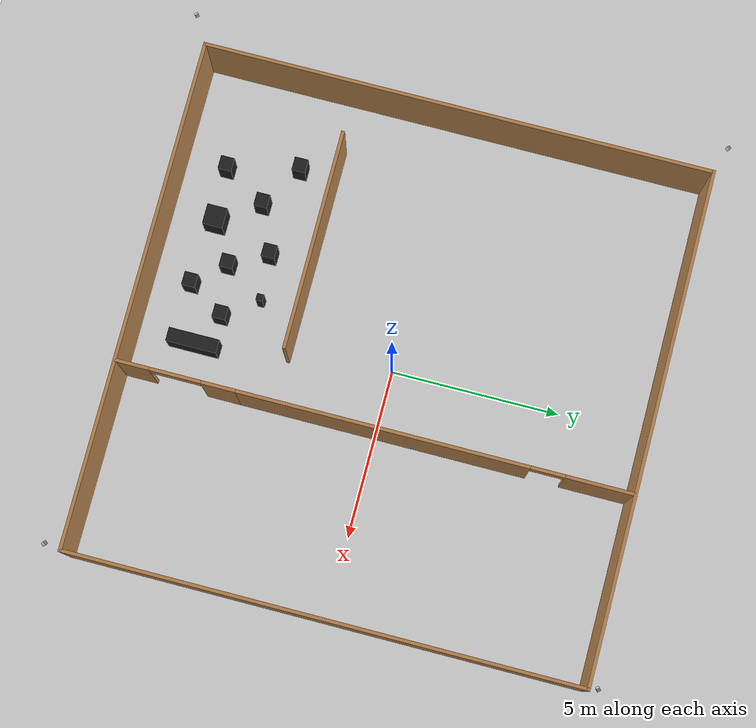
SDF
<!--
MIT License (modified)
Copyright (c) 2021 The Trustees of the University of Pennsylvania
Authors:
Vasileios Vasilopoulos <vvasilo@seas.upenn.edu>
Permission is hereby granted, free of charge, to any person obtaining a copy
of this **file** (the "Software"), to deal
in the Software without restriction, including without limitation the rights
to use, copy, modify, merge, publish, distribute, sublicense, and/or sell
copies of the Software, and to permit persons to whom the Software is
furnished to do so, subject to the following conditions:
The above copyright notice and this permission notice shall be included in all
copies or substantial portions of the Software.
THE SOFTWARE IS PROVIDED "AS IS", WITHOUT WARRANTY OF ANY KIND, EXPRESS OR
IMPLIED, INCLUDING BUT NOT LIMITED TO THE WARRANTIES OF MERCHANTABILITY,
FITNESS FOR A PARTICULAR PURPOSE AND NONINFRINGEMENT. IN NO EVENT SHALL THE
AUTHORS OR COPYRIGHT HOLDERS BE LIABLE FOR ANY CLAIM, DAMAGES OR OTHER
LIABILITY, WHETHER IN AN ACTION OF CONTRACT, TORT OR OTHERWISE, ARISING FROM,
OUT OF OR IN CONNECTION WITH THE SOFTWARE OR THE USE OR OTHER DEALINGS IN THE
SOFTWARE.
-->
<sdf version="1.6">
 <world name="default">
  <light name="sun" type="directional">
   <pose>0 0 10 0 -0 0</pose>
   <diffuse>0.8 0.8 0.8 1</diffuse>
   <specular>0.1 0.1 0.1 1</specular>
   <attenuation>
    <range>1000</range>
    <constant>0.9</constant>
    <linear>0.01</linear>
    <quadratic>0.001</quadratic>
   </attenuation>
   <direction>-0.5 0.5 -1</direction>
  </light>
  <model name="ground_plane">
   <static>1</static>
   <link name="link">
    <collision name="collision">
     <geometry><plane><normal>0 0 1</normal><size>100 100</size></plane></geometry>
     <surface><friction><ode><mu>100</mu><mu2>50</mu2></ode></friction></surface>
    </collision>
    <visual name="visual">
     <cast_shadows>0</cast_shadows>
     <geometry><plane><normal>0 0 1</normal><size>100 100</size></plane></geometry>
     <material>
      <script><uri>file://media/materials/scripts/gazebo.material</uri><name>Gazebo/Grey</name></script>
     </material>
    </visual>
   </link>
  </model>
  <gravity>0 0 -9.81</gravity>
  <magnetic_field>6e-06 2.3e-05 -4.2e-05</magnetic_field>
  <atmosphere type="adiabatic"/>
  <physics name="default_physics" default="0" type="ode">
   <max_step_size>0.0001</max_step_size>
   <real_time_factor>1</real_time_factor>
   <real_time_update_rate>10000</real_time_update_rate>
  </physics>
  <scene><ambient>0.4 0.4 0.4 1</ambient><background>0.7 0.7 0.7 1</background><shadows>1</shadows></scene>
  <spherical_coordinates>
   <surface_model>EARTH_WGS84</surface_model>
   <latitude_deg>0</latitude_deg>
   <longitude_deg>0</longitude_deg>
   <elevation>0</elevation>
   <heading_deg>0</heading_deg>
  </spherical_coordinates>
  <model name="building">
   <link name="Wall_0">
    <collision name="Wall_0_Collision">
     <geometry><box><size>15.1 0.1 2.5</size></box></geometry>
     <pose>0 0 1.25 0 -0 0</pose>
    </collision>
    <visual name="Wall_0_Visual">
     <pose>0 0 1.25 0 -0 0</pose>
     <geometry><box><size>15.1 0.1 2.5</size></box></geometry>
     <material>
      <script><uri>file://media/materials/scripts/gazebo.material</uri><name>Gazebo/Wood</name></script>
      <ambient>1 1 1 1</ambient>
     </material>
     <meta><layer>0</layer></meta>
    </visual>
    <pose>0 -7.5 0 0 -0 0</pose>
   </link>
   <link name="Wall_1">
    <collision name="Wall_1_Collision">
     <geometry><box><size>15 0.1 2.5</size></box></geometry>
     <pose>0 0 1.25 0 -0 0</pose>
    </collision>
    <visual name="Wall_1_Visual">
     <pose>0 0 1.25 0 -0 0</pose>
     <geometry><box><size>15 0.1 2.5</size></box></geometry>
     <material>
      <script><uri>file://media/materials/scripts/gazebo.material</uri><name>Gazebo/Wood</name></script>
      <ambient>1 1 1 1</ambient>
     </material>
     <meta><layer>0</layer></meta>
    </visual>
    <pose>7.5 0 0 0 -0 1.5708</pose>
   </link>
   <link name="Wall_2">
    <collision name="Wall_2_Collision">
     <geometry><box><size>15.1 0.1 2.5</size></box></geometry>
     <pose>0 0 1.25 0 -0 0</pose>
    </collision>
    <visual name="Wall_2_Visual">
     <pose>0 0 1.25 0 -0 0</pose>
     <geometry><box><size>15.1 0.1 2.5</size></box></geometry>
     <material>
      <script><uri>file://media/materials/scripts/gazebo.material</uri><name>Gazebo/Wood</name></script>
      <ambient>1 1 1 1</ambient>
     </material>
     <meta><layer>0</layer></meta>
    </visual>
    <pose>0 7.5 0 0 -0 3.14159</pose>
   </link>
   <link name="Wall_3">
    <collision name="Wall_3_Collision">
     <geometry><box><size>15 0.1 2.5</size></box></geometry>
     <pose>0 0 1.25 0 -0 0</pose>
    </collision>
    <visual name="Wall_3_Visual">
     <pose>0 0 1.25 0 -0 0</pose>
     <geometry><box><size>15 0.1 2.5</size></box></geometry>
     <material>
      <script><uri>file://media/materials/scripts/gazebo.material</uri><name>Gazebo/Wood</name></script>
      <ambient>1 1 1 1</ambient>
     </material>
     <meta><layer>0</layer></meta>
    </visual>
    <pose>-7.5 0 0 0 -0 -1.5708</pose>
   </link>
   <link name="Wall_4a">
    <collision name="Wall_4a_Collision">
     <geometry><box><size>8.5 0.1 2.5</size></box></geometry>
     <pose>0 0 1.25 0 -0 0</pose>
    </collision>
    <visual name="Wall_4a_Visual">
     <pose>0 0 1.25 0 -0 0</pose>
     <geometry><box><size>8.5 0.1 2.5</size></box></geometry>
     <material>
      <script><uri>file://media/materials/scripts/gazebo.material</uri><name>Gazebo/Wood</name></script>
      <ambient>1 1 1 1</ambient>
     </material>
     <meta><layer>0</layer></meta>
    </visual>
    <pose>2 0.25 0 0 -0 -1.5708</pose>
   </link>
   <link name="Wall_4b">
    <collision name="Wall_4b_Collision">
     <geometry><box><size>2 0.1 2.5</size></box></geometry>
     <pose>0 0 1.25 0 -0 0</pose>
    </collision>
    <visual name="Wall_4b_Visual">
     <pose>0 0 1.25 0 -0 0</pose>
     <geometry><box><size>2 0.1 2.5</size></box></geometry>
     <material>
      <script><uri>file://media/materials/scripts/gazebo.material</uri><name>Gazebo/Wood</name></script>
      <ambient>1 1 1 1</ambient>
     </material>
     <meta><layer>0</layer></meta>
    </visual>
    <pose>2 6.5 0 0 -0 -1.5708</pose>
   </link>
   <link name="Wall_4c">
    <collision name="Wall_4c_Collision">
     <geometry><box><size>1 0.1 0.5</size></box></geometry>
     <pose>0 0 2.25 0 -0 0</pose>
    </collision>
    <visual name="Wall_4c_Visual">
     <pose>0 0 2.25 0 -0 0</pose>
     <geometry><box><size>1 0.1 0.5</size></box></geometry>
     <material>
      <script><uri>file://media/materials/scripts/gazebo.material</uri><name>Gazebo/Wood</name></script>
      <ambient>1 1 1 1</ambient>
     </material>
     <meta><layer>0</layer></meta>
    </visual>
    <pose>2 5.0 0 0 -0 -1.5708</pose>
   </link>
   <link name="Wall_5a">
    <collision name="Wall_5a_Collision">
     <geometry><box><size>1 0.1 2.5</size></box></geometry>
     <pose>0 0 1.25 0 -0 0</pose>
    </collision>
    <visual name="Wall_5a_Visual">
     <pose>0 0 1.25 0 -0 0</pose>
     <geometry><box><size>1 0.1 2.5</size></box></geometry>
     <material>
      <script><uri>file://media/materials/scripts/gazebo.material</uri><name>Gazebo/Wood</name></script>
      <ambient>1 1 1 1</ambient>
     </material>
     <meta><layer>0</layer></meta>
    </visual>
    <pose>2 -4.5 0 0 -0 -1.5708</pose>
   </link>
   <link name="Wall_5b">
    <collision name="Wall_5b_Collision">
     <geometry><box><size>1 0.1 2.5</size></box></geometry>
     <pose>0 0 1.25 0 -0 0</pose>
    </collision>
    <visual name="Wall_5b_Visual">
     <pose>0 0 1.25 0 -0 0</pose>
     <geometry><box><size>1 0.1 2.5</size></box></geometry>
     <material>
      <script><uri>file://media/materials/scripts/gazebo.material</uri><name>Gazebo/Wood</name></script>
      <ambient>1 1 1 1</ambient>
     </material>
     <meta><layer>0</layer></meta>
    </visual>
    <pose>2 -7 0 0 -0 -1.5708</pose>
   </link>
   <link name="Wall_5c">
    <collision name="Wall_5c_Collision">
     <geometry><box><size>1.5 0.1 0.5</size></box></geometry>
     <pose>0 0 2.25 0 -0 0</pose>
    </collision>
    <visual name="Wall_5c_Visual">
     <pose>0 0 2.25 0 -0 0</pose>
     <geometry><box><size>1.5 0.1 0.5</size></box></geometry>
     <material>
      <script><uri>file://media/materials/scripts/gazebo.material</uri><name>Gazebo/Wood</name></script>
      <ambient>1 1 1 1</ambient>
     </material>
     <meta><layer>0</layer></meta>
    </visual>
    <pose>2 -5.75 0 0 -0 -1.5708</pose>
   </link>
   <link name="Wall_6">
    <collision name="Wall_6_Collision">
     <geometry><box><size>6.5 0.1 2.5</size></box></geometry>
     <pose>0 0 1.25 0 -0 0</pose>
    </collision>
    <visual name="Wall_6_Visual">
     <pose>0 0 1.25 0 -0 0</pose>
     <geometry><box><size>6.5 0.1 2.5</size></box></geometry>
     <material>
      <script><uri>file://media/materials/scripts/gazebo.material</uri><name>Gazebo/Wood</name></script>
      <ambient>1 1 1 1</ambient>
     </material>
     <meta><layer>0</layer></meta>
    </visual>
    <pose>-2.75 -3 0 0 -0 0</pose>
   </link>
   <link name="obstacle_1">
    <collision name="obstacle_1_Collision">
     <geometry><box><size>0.4 1.5 1.0</size></box></geometry>
     <pose>0 0 0.5 0 -0 0</pose>
    </collision>
    <visual name="obstacle_1_Visual">
     <pose>0 0 0.5 0 -0 0</pose>
     <geometry><box><size>0.4 1.5 1.0</size></box></geometry>
     <material>
      <script><uri>file://media/materials/scripts/gazebo.material</uri><name>Gazebo/FlatBlack</name></script>
     </material>
     <meta><layer>0</layer></meta>
    </visual>
    <pose>0.7 -5.75 0 0 -0 0</pose>
   </link>
   <link name="obstacle_2">
    <collision name="obstacle_2_Collision">
     <geometry><box><size>0.4 0.4 1.0</size></box></geometry>
     <pose>0 0 0.5 0 -0 0</pose>
    </collision>
    <visual name="obstacle_2_Visual">
     <pose>0 0 0.5 0 -0 0</pose>
     <geometry><box><size>0.4 0.4 1.0</size></box></geometry>
     <material>
      <script><uri>file://media/materials/scripts/gazebo.material</uri><name>Gazebo/FlatBlack</name></script>
     </material>
     <meta><layer>0</layer></meta>
    </visual>
    <pose>-5.1 -4.1 0 0 -0 0</pose>
   </link>
   <link name="obstacle_3">
    <collision name="obstacle_3_Collision">
     <geometry><box><size>0.4 0.4 1.0</size></box></geometry>
     <pose>0 0 0.5 0 -0 0</pose>
    </collision>
    <visual name="obstacle_3_Visual">
     <pose>0 0 0.5 0 -0 0</pose>
     <geometry><box><size>0.4 0.4 1.0</size></box></geometry>
     <material>
      <script><uri>file://media/materials/scripts/gazebo.material</uri><name>Gazebo/FlatBlack</name></script>
     </material>
     <meta><layer>0</layer></meta>
    </visual>
    <pose>-4.6 -6.2 0 0 -0 0</pose>
   </link>
   <link name="obstacle_4">
    <collision name="obstacle_4_Collision">
     <geometry><box><size>0.4 0.4 1.0</size></box></geometry>
     <pose>0 0 0.5 0 -0 0</pose>
    </collision>
    <visual name="obstacle_4_Visual">
     <pose>0 0 0.5 0 -0 0</pose>
     <geometry><box><size>0.4 0.4 1.0</size></box></geometry>
     <material>
      <script><uri>file://media/materials/scripts/gazebo.material</uri><name>Gazebo/FlatBlack</name></script>
     </material>
     <meta><layer>0</layer></meta>
    </visual>
    <pose>-3.8 -4.9 0 0 -0 0</pose>
   </link>
   <link name="obstacle_5">
    <collision name="obstacle_5_Collision">
     <geometry><box><size>0.4 0.4 1.0</size></box></geometry>
     <pose>0 0 0.5 0 -0 0</pose>
    </collision>
    <visual name="obstacle_5_Visual">
     <pose>0 0 0.5 0 -0 0</pose>
     <geometry><box><size>0.4 0.4 1.0</size></box></geometry>
     <material>
      <script><uri>file://media/materials/scripts/gazebo.material</uri><name>Gazebo/FlatBlack</name></script>
     </material>
     <meta><layer>0</layer></meta>
    </visual>
    <pose>-2.4 -4.3 0 0 -0 0</pose>
   </link>
   <link name="obstacle_6">
    <collision name="obstacle_6_Collision">
     <geometry><box><size>0.4 0.4 1.0</size></box></geometry>
     <pose>0 0 0.5 0 -0 0</pose>
    </collision>
    <visual name="obstacle_6_Visual">
     <pose>0 0 0.5 0 -0 0</pose>
     <geometry><box><size>0.4 0.4 1.0</size></box></geometry>
     <material>
      <script><uri>file://media/materials/scripts/gazebo.material</uri><name>Gazebo/FlatBlack</name></script>
     </material>
     <meta><layer>0</layer></meta>
    </visual>
    <pose>-1.8 -5.4 0 0 -0 0</pose>
   </link>
   <link name="obstacle_7">
    <collision name="obstacle_7_Collision">
     <geometry><box><size>0.4 0.4 1.0</size></box></geometry>
     <pose>0 0 0.5 0 -0 0</pose>
    </collision>
    <visual name="obstacle_7_Visual">
     <pose>0 0 0.5 0 -0 0</pose>
     <geometry><box><size>0.4 0.4 1.0</size></box></geometry>
     <material>
      <script><uri>file://media/materials/scripts/gazebo.material</uri><name>Gazebo/FlatBlack</name></script>
     </material>
     <meta><layer>0</layer></meta>
    </visual>
    <pose>-1.0 -6.3 0 0 -0 0</pose>
   </link>
   <link name="obstacle_8">
    <collision name="obstacle_8_Collision">
     <geometry><box><size>0.6 0.6 1.0</size></box></geometry>
     <pose>0 0 0.5 0 -0 0</pose>
    </collision>
    <visual name="obstacle_8_Visual">
     <pose>0 0 0.5 0 -0 0</pose>
     <geometry><box><size>0.6 0.6 1.0</size></box></geometry>
     <material>
      <script><uri>file://media/materials/scripts/gazebo.material</uri><name>Gazebo/FlatBlack</name></script>
     </material>
     <meta><layer>0</layer></meta>
    </visual>
    <pose>-3 -6.1 0 0 -0 0</pose>
   </link>
   <link name="obstacle_9">
    <collision name="obstacle_9_Collision">
     <geometry><box><size>0.2 0.2 1.0</size></box></geometry>
     <pose>0 0 0.5 0 -0 0</pose>
    </collision>
    <visual name="obstacle_9_Visual">
     <pose>0 0 0.5 0 -0 0</pose>
     <geometry><box><size>0.2 0.2 1.0</size></box></geometry>
     <material>
      <script><uri>file://media/materials/scripts/gazebo.material</uri><name>Gazebo/FlatBlack</name></script>
     </material>
     <meta><layer>0</layer></meta>
    </visual>
    <pose>-1 -4.2 0 0 -0 0</pose>
   </link>
   <link name="obstacle_10">
    <collision name="obstacle_10_Collision">
     <geometry><box><size>0.4 0.4 1.0</size></box></geometry>
     <pose>0 0 0.5 0 -0 0</pose>
    </collision>
    <visual name="obstacle_10_Visual">
     <pose>0 0 0.5 0 -0 0</pose>
     <geometry><box><size>0.4 0.4 1.0</size></box></geometry>
     <material>
      <script><uri>file://media/materials/scripts/gazebo.material</uri><name>Gazebo/FlatBlack</name></script>
     </material>
     <meta><layer>0</layer></meta>
    </visual>
    <pose>-0.3 -5.2 0 0 -0 0</pose>
   </link>
   <static>1</static>
  </model>
  <model name="camera1">
   <static>true</static>
   <pose>-7.5 -7.5 5 0 0.86 0.72</pose>
   <link name="link">
    <visual name="visual">
     <cast_shadows>0</cast_shadows>
     <geometry><box><size>0.1 0.1 0.1</size></box></geometry>
    </visual>
    <sensor name="my_camera" type="camera">
     <camera>
      <save enabled="true"><path>/home/kodlab/gazebo_camera_1</path></save>
      <horizontal_fov>1.5</horizontal_fov>
      <image><width>1920</width><height>1080</height></image>
      <clip><near>0.1</near><far>100</far></clip>
     </camera>
     <always_on>1</always_on>
     <update_rate>30</update_rate>
    </sensor>
   </link>
  </model>
  <model name="camera2">
   <static>true</static>
   <pose>7.5 -7.5 5 0 0.86 2.42</pose>
   <link name="link">
    <visual name="visual">
     <cast_shadows>0</cast_shadows>
     <geometry><box><size>0.1 0.1 0.1</size></box></geometry>
    </visual>
    <sensor name="my_camera" type="camera">
     <camera>
      <save enabled="true"><path>/home/kodlab/gazebo_camera_2</path></save>
      <horizontal_fov>1.5</horizontal_fov>
      <image><width>1920</width><height>1080</height></image>
      <clip><near>0.1</near><far>100</far></clip>
     </camera>
     <always_on>1</always_on>
     <update_rate>30</update_rate>
    </sensor>
   </link>
  </model>
  <model name="camera3">
   <static>true</static>
   <pose>7.5 7.5 5 0 0.86 -2.42</pose>
   <link name="link">
    <visual name="visual">
     <cast_shadows>0</cast_shadows>
     <geometry><box><size>0.1 0.1 0.1</size></box></geometry>
    </visual>
    <sensor name="my_camera" type="camera">
     <camera>
      <save enabled="true"><path>/home/kodlab/gazebo_camera_3</path></save>
      <horizontal_fov>1.5</horizontal_fov>
      <image><width>1920</width><height>1080</height></image>
      <clip><near>0.1</near><far>100</far></clip>
     </camera>
     <always_on>1</always_on>
     <update_rate>30</update_rate>
    </sensor>
   </link>
  </model>
  <model name="camera4">
   <static>true</static>
   <pose>-7.5 7.5 5 0 0.86 -0.72</pose>
   <link name="link">
    <visual name="visual">
     <cast_shadows>0</cast_shadows>
     <geometry><box><size>0.1 0.1 0.1</size></box></geometry>
    </visual>
    <sensor name="my_camera" type="camera">
     <camera>
      <save enabled="true"><path>/home/kodlab/gazebo_camera_4</path></save>
      <horizontal_fov>1.5</horizontal_fov>
      <image><width>1920</width><height>1080</height></image>
      <clip><near>0.1</near><far>100</far></clip>
     </camera>
     <always_on>1</always_on>
     <update_rate>30</update_rate>
    </sensor>
   </link>
  </model>
  <model name="camera5">
   <static>true</static>
   <pose>0 0 7 0 1.57 0</pose>
   <link name="link">
    <visual name="visual">
     <cast_shadows>0</cast_shadows>
     <geometry><box><size>0.1 0.1 0.1</size></box></geometry>
    </visual>
    <sensor name="my_camera" type="camera">
     <camera>
      <save enabled="true"><path>/home/kodlab/gazebo_camera_5</path></save>
      <horizontal_fov>1.7</horizontal_fov>
      <image><width>1920</width><height>1920</height></image>
      <clip><near>0.1</near><far>100</far></clip>
     </camera>
     <always_on>1</always_on>
     <update_rate>30</update_rate>
    </sensor>
   </link>
  </model>
 </world>
</sdf>
